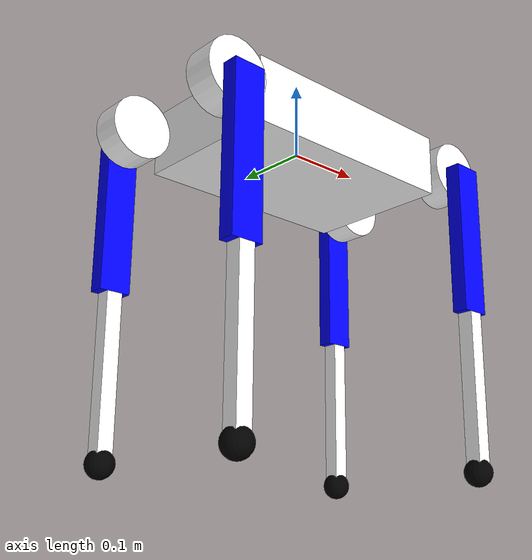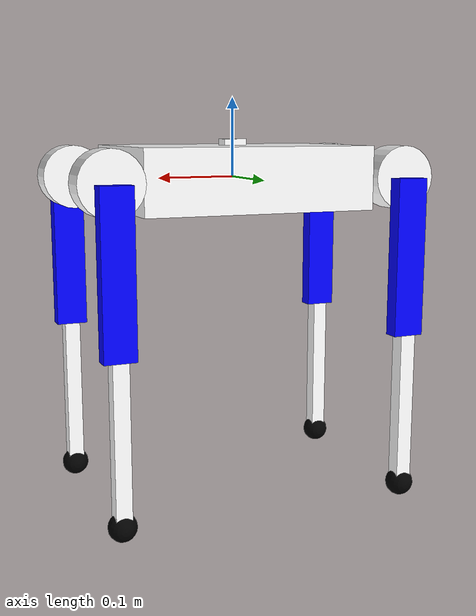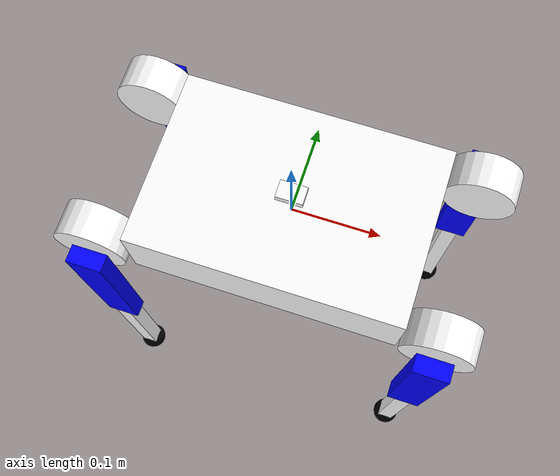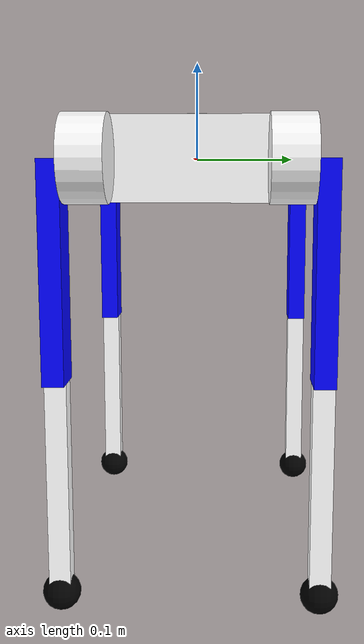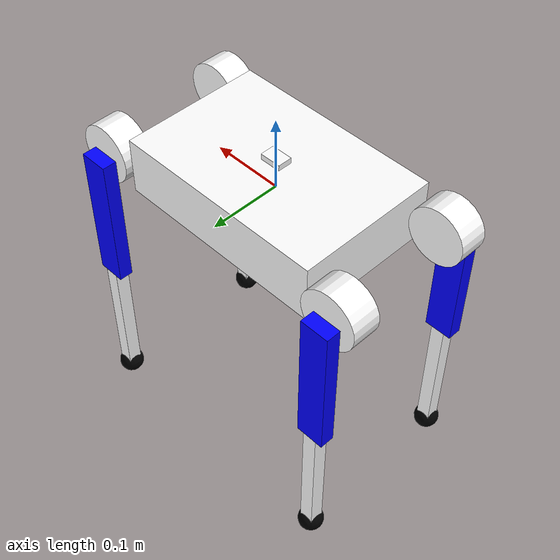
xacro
<?xml version="1.0"?>
<robot name="dog"
    xmlns:xacro="http://ros.org/wiki/xacro">

    <!-- Defining the colors used in this robot -->
    <material name="Black">
        <color rgba="0 0 0 1"/>
    </material>

    <material name="White">
        <color rgba="1 1 1 1"/>
    </material>

    <material name="Blue">
        <color rgba="0 0 1 1"/>
    </material>

    <material name="Red">
        <color rgba="1 0 0 1"/>
    </material>

    <!-- Constants -->
    <xacro:property name="M_PI" value="3.14159"/>

    <!-- body_link properties -->
    <xacro:property name="body_link_height" value="0.08" />
    <xacro:property name="body_link_width" value="0.2" />
    <xacro:property name="body_link_length" value="0.3" />
    <xacro:property name="body_h" value="0.4" />

    <!-- leg_calf properties -->
    <xacro:property name="calf_height" value="0.02" />
    <xacro:property name="calf_width" value="0.02" />
    <xacro:property name="calf_len" value="0.2" />

    <!-- leg_thigh properties -->
    <xacro:property name="thigh_height" value="0.02" />
    <xacro:property name="thigh_width" value="0.04" />
    <xacro:property name="thigh_len" value="0.2" />

    <!-- leg_shoulder properties -->
    <xacro:property name="shoulder_radius" value="0.04" />
    <xacro:property name="shoulder_len" value="0.04" />

    <!-- point_feet properties -->
    <xacro:property name="point_feet_radius" value="0.017675" />

    <!-- Inertial matrix -->
    <xacro:macro name="inertial_matrix" params="mass">
        <inertial>
            <mass value="${mass}" />
            <inertia ixx="0.166667" ixy="0" ixz="0" iyy="0.166667" iyz="0" izz="0.166667"/>
        </inertial>
    </xacro:macro>

    <!-- dog_base_link -->
    <link name="dog_base_link">
        <visual>
            <origin xyz="0 0 ${body_link_height/2+body_link_height/20}" rpy="0 0 0" />
            <geometry>
                <box size="${body_link_length/10} ${body_link_width/10} ${body_link_height/10}" />
            </geometry>
            <material name="White" />
        </visual>
    </link>

    <!-- body_link -->
    <link name="body_link">
        <visual>
            <origin xyz="0 0 0" rpy="0 0 0" />
            <geometry>
                <box size="${body_link_length} ${body_link_width} ${body_link_height}" />
            </geometry>
            <material name="White" />
        </visual>
        <collision>
            <origin xyz="0 0 0" rpy="0 0 0" />
            <geometry>
                <box size="${body_link_length/2} ${body_link_width} ${body_link_height}" />
            </geometry>
        </collision>
        <xacro:inertial_matrix mass="5" />
    </link>

    <!-- left_leg -->
    <xacro:macro name="left_leg" params="leg_name">
        <link name="${leg_name}_shoulder_link">
            <visual>
                <origin xyz="0 0 0" rpy="1.57 0 0" />
                <geometry>
                    <cylinder radius="${shoulder_radius}" length="${shoulder_len}" />
                </geometry>
                <material name="White" />
            </visual>
            <collision>
                <origin xyz="0 0 0" rpy="1.57 0 0" />
                <geometry>
                    <cylinder radius="${shoulder_radius/2}" length="${shoulder_len/2}" />
                </geometry>
            </collision>
            <inertial>
                <mass value="0.68" />
                <origin xyz="0 0 0" rpy="0 0 0" />
                <inertia ixx="0.1" ixy="0.0" ixz="0.0" iyy="0.1" iyz="0.0" izz="0.2"/>
            </inertial>
        </link>

        <link name="${leg_name}_thigh_link">
            <visual>
                <origin xyz="0 ${thigh_len/2} 0" rpy="0 0 0" />
                <geometry>
                    <box size="${thigh_width} ${thigh_len} ${thigh_height}" />
                </geometry>
                <material name="Blue" />
            </visual>
            <collision>
                <origin xyz="0 ${thigh_len/2} 0" rpy="0 0 0" />
                <geometry>
                    <box size="${thigh_width/2} ${thigh_len/2} ${thigh_height/2}" />
                </geometry>
            </collision>
            <xacro:inertial_matrix mass="1" />
        </link>

        <link name="${leg_name}_calf_link">
            <visual>
                <origin xyz="0 ${calf_len/2} 0" rpy="0 0 0" />
                <geometry>
                    <box size="${calf_width} ${calf_len} ${calf_height}" />
                </geometry>
                <material name="White" />
            </visual>
            <collision>
                <origin xyz="0 ${calf_len/2} 0" rpy="0 0 0" />
                <geometry>
                    <box size="${calf_width/2} ${calf_len/2} ${calf_height/2}" />
                </geometry>
            </collision>
            <xacro:inertial_matrix mass="0.166" />
        </link>

        <link name="${leg_name}_feet_link">
            <visual>
                <origin xyz="0 ${thigh_len/2} 0" rpy="0 0 0" />
                <geometry>
                    <sphere radius="${point_feet_radius}" />
                </geometry>
                <material name="Black" />
            </visual>
            <collision>
                <origin xyz="0 ${thigh_len/2} 0" rpy="0 0 0" />
                <geometry>
                    <sphere radius="${point_feet_radius}" />
                </geometry>
            </collision>
            <inertial>
                <mass value="0.06"/>
                <origin rpy="0 0 0" xyz="0 0 0"/>
                <inertia ixx="0.05" ixy="0" ixz="0" iyy="0.1" iyz="0" izz="0.1"/>
            </inertial>
        </link>

        <joint name="${leg_name}_shoulder_joint" type="revolute">
            <origin xyz="0 ${shoulder_len/2+calf_height/2} 0" rpy="-1.57 0 0" />
            <parent link="${leg_name}_shoulder_link" />
            <child link="${leg_name}_thigh_link" />
            <axis xyz="0 0 1" />
            <limit effort="55" lower="-${M_PI}" upper="${M_PI}" velocity="52.4" />
            <dynamics damping="0" friction="0" />
        </joint>

        <joint name="${leg_name}_keen_joint" type="revolute">
            <origin xyz="0 ${thigh_len} 0" rpy="0 0 0" />
            <parent link="${leg_name}_thigh_link" />
            <child link="${leg_name}_calf_link" />
            <axis xyz="0 0 1" />
            <limit effort="55" lower="0.0" upper="${M_PI}" velocity="52.4" />
            <dynamics damping="0" friction="0" />
        </joint>

        <joint name="${leg_name}_feet_joint" type="fixed">
            <origin xyz="0 ${calf_len/2} 0" rpy="0 0 0" />
            <parent link="${leg_name}_calf_link" />
            <child link="${leg_name}_feet_link" />
            <axis xyz="0 0 1" />
        </joint>
    </xacro:macro>

    <xacro:macro name="right_leg" params="leg_name">
        <link name="${leg_name}_shoulder_link">
            <visual>
                <origin xyz="0 0 0" rpy="1.57 0 0" />
                <geometry>
                    <cylinder radius="${shoulder_radius}" length="${shoulder_len}" />
                </geometry>
                <material name="White" />
            </visual>
            <collision>
                <origin xyz="0 0 0" rpy="1.57 0 0" />
                <geometry>
                    <cylinder radius="${shoulder_radius/2}" length="${shoulder_len/2}" />
                </geometry>
            </collision>
            <inertial>
                <mass value="0.68" />
                <origin xyz="0 0 0" rpy="0 0 0" />
                <inertia ixx="0.1" ixy="0.0" ixz="0.0" iyy="0.1" iyz="0.0" izz="0.2"/>
            </inertial>
        </link>

        <link name="${leg_name}_thigh_link">
            <visual>
                <origin xyz="0 ${thigh_len/2} 0" rpy="0 0 0" />
                <geometry>
                    <box size="${thigh_width} ${thigh_len} ${thigh_height}" />
                </geometry>
                <material name="Blue" />
            </visual>
            <collision>
                <origin xyz="0 ${thigh_len/2} 0" rpy="0 0 0" />
                <geometry>
                    <box size="${thigh_width/2} ${thigh_len/2} ${thigh_height/2}" />
                </geometry>
            </collision>
            <xacro:inertial_matrix mass="1" />
        </link>

        <link name="${leg_name}_calf_link">
            <visual>
                <origin xyz="0 ${calf_len/2} 0" rpy="0 0 0" />
                <geometry>
                    <box size="${calf_width} ${calf_len} ${calf_height}" />
                </geometry>
                <material name="White" />
            </visual>
            <collision>
                <origin xyz="0 ${calf_len/2} 0" rpy="0 0 0" />
                <geometry>
                    <box size="${calf_width/2} ${calf_len/2} ${calf_height/2}" />
                </geometry>
            </collision>
            <xacro:inertial_matrix mass="0.166" />
        </link>

        <link name="${leg_name}_feet_link">
            <visual>
                <origin xyz="0 ${thigh_len/2} 0" rpy="0 0 0" />
                <geometry>
                    <sphere radius="${point_feet_radius}" />
                </geometry>
                <material name="Black" />
            </visual>
            <collision>
                <origin xyz="0 ${thigh_len/2} 0" rpy="0 0 0" />
                <geometry>
                    <sphere radius="${point_feet_radius}" />
                </geometry>
            </collision>
            <inertial>
                <mass value="0.06"/>
                <origin rpy="0 0 0" xyz="0 0 0"/>
                <inertia ixx="0.05" ixy="0" ixz="0" iyy="0.1" iyz="0" izz="0.1"/>
            </inertial>
        </link>

        <joint name="${leg_name}_shoulder_joint" type="revolute">
            <origin xyz="0 -${shoulder_len/2+calf_height/2} 0" rpy="-1.57 0 0" />
            <parent link="${leg_name}_shoulder_link" />
            <child link="${leg_name}_thigh_link" />
            <axis xyz="0 0 1" />
            <limit effort="55" lower="-${M_PI}" upper="${M_PI}" velocity="52.4" />
            <dynamics damping="0" friction="0" />
        </joint>

        <joint name="${leg_name}_keen_joint" type="revolute">
            <origin xyz="0 ${thigh_len} 0" rpy="0 0 0" />
            <parent link="${leg_name}_thigh_link" />
            <child link="${leg_name}_calf_link" />
            <axis xyz="0 0 1" />
            <limit effort="55" lower="0.0" upper="${M_PI}" velocity="52.4" />
            <dynamics damping="0" friction="0" />
        </joint>

        <joint name="${leg_name}_feet_joint" type="fixed">
            <origin xyz="0 ${calf_len/2} 0" rpy="0 0 0" />
            <parent link="${leg_name}_calf_link" />
            <child link="${leg_name}_feet_link" />
            <axis xyz="0 0 1" />
        </joint>
    </xacro:macro>

    <!-- legs -->
    <xacro:left_leg leg_name="left_forward_leg" />
    <xacro:left_leg leg_name="left_back_leg" />
    <xacro:right_leg leg_name="right_forward_leg" />
    <xacro:right_leg leg_name="right_back_leg" />

    <!-- base_body_joint -->
    <joint name="base_body_joint" type="fixed">
        <origin xyz="0 0 0" rpy="0 0 0" />
        <!--up: rpy="3.14 0 0" down: rpy="0 0 0"-->
        <parent link="dog_base_link" />
        <child link="body_link" />
    </joint>

    <!-- leg_body_joint -->
    <joint name="left_forward_leg_body_joint" type="revolute">
        <origin xyz="${body_link_length/2+shoulder_radius} ${body_link_width/2-shoulder_len/4} 0" rpy="0 0 0" />
        <parent link="body_link" />
        <child link="left_forward_leg_shoulder_link" />
        <axis xyz="1 0 0" />
        <limit effort="20" lower="-${M_PI/2}" upper="${M_PI/2}" velocity="52.4" />
        <dynamics damping="0" friction="0" />
    </joint>

    <joint name="left_back_leg_body_joint" type="revolute">
        <origin xyz="-${body_link_length/2+shoulder_radius} ${body_link_width/2-shoulder_len/4} 0" rpy="0 0 0" />
        <parent link="body_link" />
        <child link="left_back_leg_shoulder_link" />
        <axis xyz="1 0 0" />
        <limit effort="20" lower="-${M_PI/2}" upper="${M_PI/2}" velocity="52.4" />
        <dynamics damping="0" friction="0" />
    </joint>

    <joint name="right_forward_leg_body_joint" type="revolute">
        <origin xyz="${body_link_length/2+shoulder_radius} -${body_link_width/2-shoulder_len/4} 0" rpy="0 0 0" />
        <parent link="body_link" />
        <child link="right_forward_leg_shoulder_link" />
        <axis xyz="1 0 0" />
        <limit effort="20" lower="-${M_PI/2}" upper="${M_PI/2}" velocity="52.4" />
        <dynamics damping="0" friction="0" />
    </joint>

    <joint name="right_back_leg_body_joint" type="revolute">
        <origin xyz="-${body_link_length/2+shoulder_radius} -${body_link_width/2-shoulder_len/4} 0" rpy="0 0 0" />
        <parent link="body_link" />
        <child link="right_back_leg_shoulder_link" />
        <axis xyz="1 0 0" />
        <limit effort="20" lower="-${M_PI/2}" upper="${M_PI/2}" velocity="52.4" />
        <dynamics damping="0" friction="0" />
    </joint>

    <!-- ros_control plugin -->
    <gazebo>
        <plugin name="gazebo_ros_control" filename="libgazebo_ros_control.so">
            <robotNamespace>/dog</robotNamespace>
        </plugin>
    </gazebo>

    <!-- Transmissions for ROS Control -->
    <xacro:macro name="transmission_block" params="joint_name">
        <transmission name="tran_dog">
            <type>transmission_interface/SimpleTransmission</type>
            <joint name="${joint_name}">
                <hardwareInterface>hardware_interface/PositionJointInterface</hardwareInterface>
            </joint>
            <actuator name="motor_dog">
                <hardwareInterface>hardware_interface/PositionJointInterface</hardwareInterface>
                <mechanicalReduction>1</mechanicalReduction>
            </actuator>
        </transmission>
    </xacro:macro>

    <xacro:transmission_block joint_name="left_forward_leg_body_joint"/>
    <xacro:transmission_block joint_name="left_forward_leg_shoulder_joint"/>
    <xacro:transmission_block joint_name="left_forward_leg_keen_joint"/>

    <xacro:transmission_block joint_name="left_back_leg_body_joint"/>
    <xacro:transmission_block joint_name="left_back_leg_shoulder_joint"/>
    <xacro:transmission_block joint_name="left_back_leg_keen_joint"/>

    <xacro:transmission_block joint_name="right_forward_leg_body_joint"/>
    <xacro:transmission_block joint_name="right_forward_leg_shoulder_joint"/>
    <xacro:transmission_block joint_name="right_forward_leg_keen_joint"/>

    <xacro:transmission_block joint_name="right_back_leg_body_joint"/>
    <xacro:transmission_block joint_name="right_back_leg_shoulder_joint"/>
    <xacro:transmission_block joint_name="right_back_leg_keen_joint"/>

    <!-- /////////////////////////// ARM ///////////////////////////////// -->
    <!-- /////////////////////////// ARM ///////////////////////////////// -->
    <!-- /////////////////////////// ARM ///////////////////////////////// -->

</robot>
